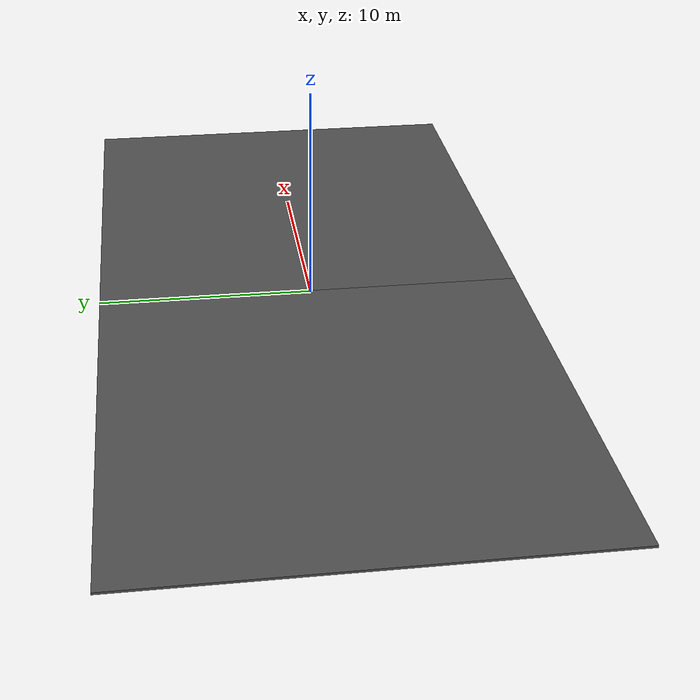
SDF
<?xml version='1.0'?>
<sdf version='1.7'>
  <model name='asphalt_plane_1x2'>
    <model name='asphalt_plane'>
      <pose>-9.99972 -1e-05 -0 0 -0 0</pose>
      <static>1</static>
      <link name='link'>
        <collision name='collision'>
          <geometry>
            <box>
              <size>20 20 0.1</size>
            </box>
          </geometry>
        </collision>
        <visual name='visual'>
          <cast_shadows>0</cast_shadows>
          <geometry>
            <box>
              <size>20 20 0.1</size>
            </box>
          </geometry>
          <material>
            <script>
              <uri>model://asphalt_plane/materials/scripts</uri>
              <uri>model://asphalt_plane/materials/textures</uri>
              <name>vrc/asphalt</name>
            </script>
          </material>
        </visual>
      </link>
    </model>
    <model name='asphalt_plane_0'>
      <pose>10 -2e-06 -0 0 -0 0</pose>
      <static>1</static>
      <link name='link'>
        <collision name='collision'>
          <geometry>
            <box>
              <size>20 20 0.1</size>
            </box>
          </geometry>
        </collision>
        <visual name='visual'>
          <cast_shadows>0</cast_shadows>
          <geometry>
            <box>
              <size>20 20 0.1</size>
            </box>
          </geometry>
          <material>
            <script>
              <uri>model://asphalt_plane/materials/scripts</uri>
              <uri>model://asphalt_plane/materials/textures</uri>
              <name>vrc/asphalt</name>
            </script>
          </material>
        </visual>
      </link>
    </model>
    <static>0</static>
    <allow_auto_disable>1</allow_auto_disable>
  </model>
</sdf>
